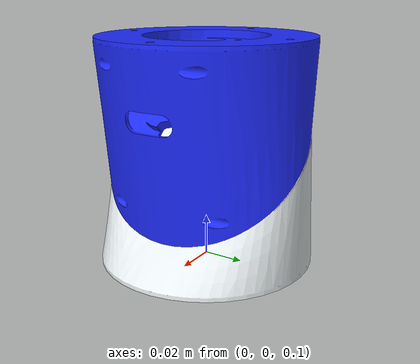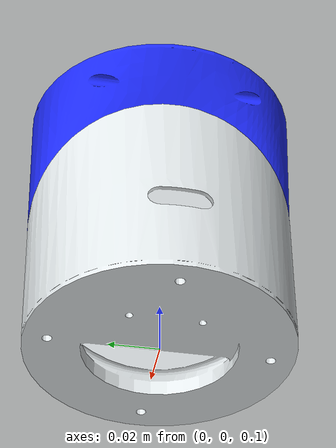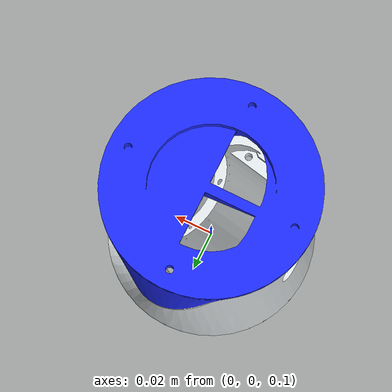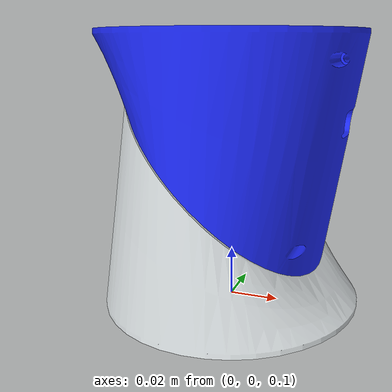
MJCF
<?xml version="1.0" encoding="utf-8"?>
<mujoco model="ZBOT_single">
  <compiler angle="radian" autolimits="true" meshdir="meshes" balanceinertia="true"/>
  <option timestep="0.002" integrator="implicitfast" gravity="0 0 -9.81"/>

  <default>
    <joint damping="0" frictionloss="0" armature="0"/>
    <geom contype="1" conaffinity="1" condim="3" friction="0.8 0.1 0.1"/>
  </default>

  <asset>
    <mesh name="zbot_a_mesh" file="a.STL"/>
    <mesh name="zbot_b_mesh" file="b.STL"/>
    <material name="zbot_white" rgba="0.89804 0.92157 0.92941 1"/>
    <material name="zbot_blue" rgba="0.11702 0.17021 1 1"/>
  </asset>

  <worldbody>
    <body name="a" pos="0 0 0.1">
      <freejoint name="root"/>
      <inertial pos="-0.0022495 -0.000029534 0.042888"
                mass="0.54171"
                fullinertia="0.00032672 0.00030489 0.00038858 0.00000018757 0.000027242 -0.00000010479"/>
      <geom name="a_geom" type="mesh" mesh="zbot_a_mesh" material="zbot_white"/>

      <body name="b" pos="-0.00021213 0 0.054788" quat="0.923879181 0 0.382684281 0">
        <joint name="joint" type="hinge" pos="0 0 0" axis="0 0 1"
               limited="true" range="-6.28 6.28"/>
        <inertial pos="-0.02292 -0.00016188 0.03226"
                  mass="0.17138"
                  fullinertia="0.00013655 0.00016418 0.00018815 0.0000011224 -0.000038072 -0.000000034693"/>
        <geom name="b_geom" type="mesh" mesh="zbot_b_mesh" material="zbot_blue"/>
      </body>
    </body>
  </worldbody>

  <actuator>
    <position name="joint_position" joint="joint" kp="50" kv="5"
              ctrllimited="true" ctrlrange="-6.28 6.28"
              forcelimited="true" forcerange="-20 20"/>
  </actuator>
</mujoco>
